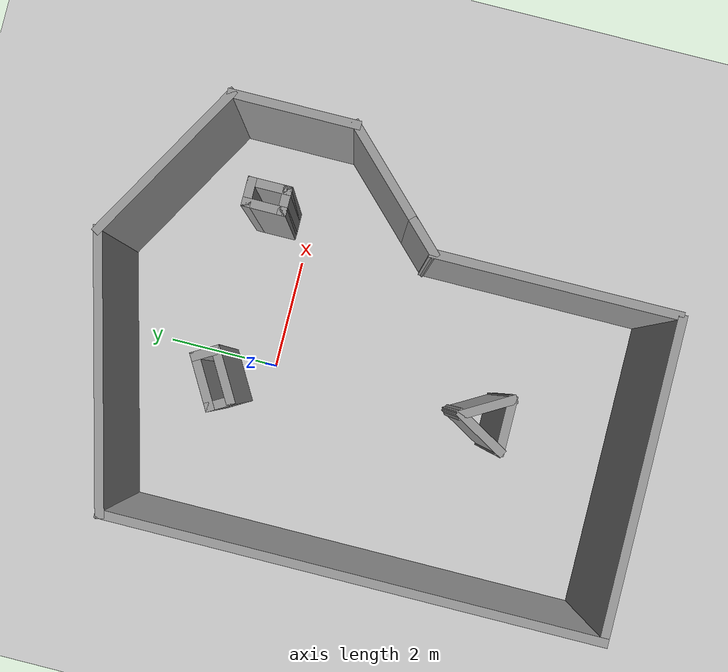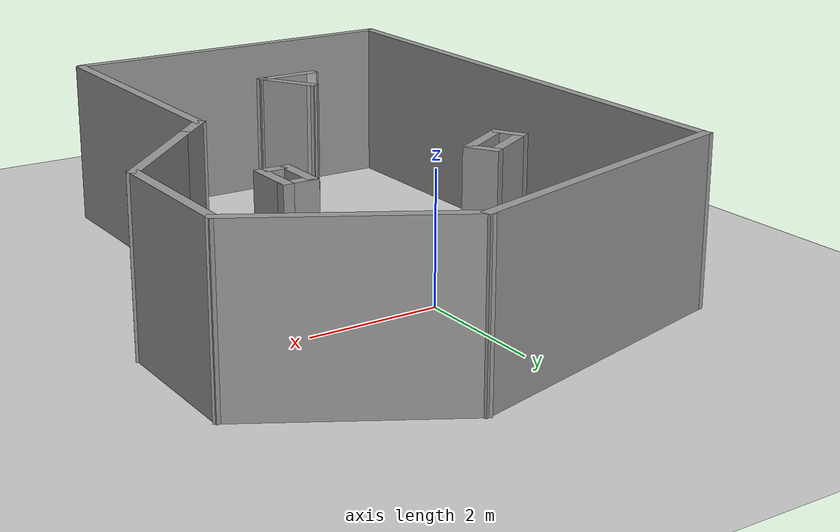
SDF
<sdf version="1.7">
 <world name="default">
  <light name="sun" type="directional">
   <pose>0 0 10 0 -0 0</pose>
   <diffuse>0.8 0.8 0.8 1</diffuse>
   <specular>0.2 0.2 0.2 1</specular>
   <attenuation>
    <range>1000</range>
    <constant>0.9</constant>
    <linear>0.01</linear>
    <quadratic>0.001</quadratic>
   </attenuation>
   <direction>-0.5 0.1 -0.9</direction>
   <spot><inner_angle>0</inner_angle><outer_angle>0</outer_angle><falloff>0</falloff></spot>
  </light>
  <model name="ground_plane">
   <static>1</static>
   <link name="link">
    <collision name="collision">
     <geometry><plane><normal>0 0 1</normal><size>100 100</size></plane></geometry>
     <surface><friction><ode><mu>100</mu><mu2>50</mu2></ode></friction></surface>
    </collision>
    <visual name="visual">
     <cast_shadows>0</cast_shadows>
     <geometry><plane><normal>0 0 1</normal><size>100 100</size></plane></geometry>
     <material>
      <script><uri>file://media/materials/scripts/gazebo.material</uri><name>Gazebo/Grey</name></script>
     </material>
    </visual>
   </link>
  </model>
  <gravity>0 0 -9.8</gravity>
  <magnetic_field>6e-06 2.3e-05 -4.2e-05</magnetic_field>
  <atmosphere type="adiabatic"/>
  <physics type="ode">
   <max_step_size>0.001</max_step_size>
   <real_time_factor>1</real_time_factor>
   <real_time_update_rate>1000</real_time_update_rate>
  </physics>
  <scene><ambient>0.4 0.4 0.4 1</ambient><background>0.7 0.7 0.7 1</background><shadows>1</shadows></scene>
  <audio><device>default</device></audio>
  <spherical_coordinates>
   <surface_model>EARTH_WGS84</surface_model>
   <latitude_deg>0</latitude_deg>
   <longitude_deg>0</longitude_deg>
   <elevation>0</elevation>
   <heading_deg>0</heading_deg>
  </spherical_coordinates>
  <model name="Untitled">
   <pose>0.581074 -1.61599 0 0 -0 0</pose>
   <link name="Wall_0">
    <collision name="Wall_0_Collision">
     <geometry><box><size>8.5 0.15 2.5</size></box></geometry>
     <pose>0 0 1.25 0 -0 0</pose>
    </collision>
    <visual name="Wall_0_Visual">
     <pose>0 0 1.25 0 -0 0</pose>
     <geometry><box><size>8.5 0.15 2.5</size></box></geometry>
     <material>
      <script><uri>file://media/materials/scripts/gazebo.material</uri><name>Gazebo/Grey</name></script>
      <ambient>1 1 1 1</ambient>
     </material>
     <meta><layer>0</layer></meta>
    </visual>
    <pose>-3.57107 -0.60901 0 0 -0 -1.5708</pose>
   </link>
   <link name="Wall_12">
    <collision name="Wall_12_Collision">
     <geometry><box><size>5.5 0.15 2.5</size></box></geometry>
     <pose>0 0 1.25 0 -0 0</pose>
    </collision>
    <visual name="Wall_12_Visual">
     <pose>0 0 1.25 0 -0 0</pose>
     <geometry><box><size>5.5 0.15 2.5</size></box></geometry>
     <material>
      <script><uri>file://media/materials/scripts/gazebo.material</uri><name>Gazebo/Grey</name></script>
      <ambient>1 1 1 1</ambient>
     </material>
     <meta><layer>0</layer></meta>
    </visual>
    <pose>-0.896074 -4.78401 0 0 -0 0</pose>
   </link>
   <link name="Wall_14">
    <collision name="Wall_14_Collision">
     <geometry><box><size>1 0.15 2.5</size></box></geometry>
     <pose>0 0 1.25 0 -0 0</pose>
    </collision>
    <visual name="Wall_14_Visual">
     <pose>0 0 1.25 0 -0 0</pose>
     <geometry><box><size>1 0.15 2.5</size></box></geometry>
     <material>
      <script><uri>file://media/materials/scripts/gazebo.material</uri><name>Gazebo/Grey</name></script>
      <ambient>1 1 1 1</ambient>
     </material>
     <meta><layer>0</layer></meta>
    </visual>
    <pose>-1.10053 2.49841 0 0 -0 0.523599</pose>
   </link>
   <link name="Wall_15">
    <collision name="Wall_15_Collision">
     <geometry><box><size>0.5 0.15 2.5</size></box></geometry>
     <pose>0 0 1.25 0 -0 0</pose>
    </collision>
    <visual name="Wall_15_Visual">
     <pose>0 0 1.25 0 -0 0</pose>
     <geometry><box><size>0.5 0.15 2.5</size></box></geometry>
     <material>
      <script><uri>file://media/materials/scripts/gazebo.material</uri><name>Gazebo/Grey</name></script>
      <ambient>1 1 1 1</ambient>
     </material>
     <meta><layer>0</layer></meta>
    </visual>
    <pose>-0.64497 2.55936 0 0 -0 -1.0472</pose>
   </link>
   <link name="Wall_16">
    <collision name="Wall_16_Collision">
     <geometry><box><size>1 0.15 2.5</size></box></geometry>
     <pose>0 0 1.25 0 -0 0</pose>
    </collision>
    <visual name="Wall_16_Visual">
     <pose>0 0 1.25 0 -0 0</pose>
     <geometry><box><size>1 0.15 2.5</size></box></geometry>
     <material>
      <script><uri>file://media/materials/scripts/gazebo.material</uri><name>Gazebo/Grey</name></script>
      <ambient>1 1 1 1</ambient>
     </material>
     <meta><layer>0</layer></meta>
    </visual>
    <pose>-0.925531 2.1953 0 0 -0 -2.61799</pose>
   </link>
   <link name="Wall_17">
    <collision name="Wall_17_Collision">
     <geometry><box><size>0.5 0.15 2.5</size></box></geometry>
     <pose>0 0 1.25 0 -0 0</pose>
    </collision>
    <visual name="Wall_17_Visual">
     <pose>0 0 1.25 0 -0 0</pose>
     <geometry><box><size>0.5 0.15 2.5</size></box></geometry>
     <material>
      <script><uri>file://media/materials/scripts/gazebo.material</uri><name>Gazebo/Grey</name></script>
      <ambient>1 1 1 1</ambient>
     </material>
     <meta><layer>0</layer></meta>
    </visual>
    <pose>-1.38109 2.13436 0 0 -0 2.0944</pose>
   </link>
   <link name="Wall_19">
    <collision name="Wall_19_Collision">
     <geometry><box><size>0.75 0.15 2.5</size></box></geometry>
     <pose>0 0 1.25 0 -0 0</pose>
    </collision>
    <visual name="Wall_19_Visual">
     <pose>0 0 1.25 0 -0 0</pose>
     <geometry><box><size>0.75 0.15 2.5</size></box></geometry>
     <material>
      <script><uri>file://media/materials/scripts/gazebo.material</uri><name>Gazebo/Grey</name></script>
      <ambient>1 1 1 1</ambient>
     </material>
     <meta><layer>0</layer></meta>
    </visual>
    <pose>1.8895 2.23077 0 0 -0 -1.5708</pose>
   </link>
   <link name="Wall_20">
    <collision name="Wall_20_Collision">
     <geometry><box><size>0.5 0.15 2.5</size></box></geometry>
     <pose>0 0 1.25 0 -0 0</pose>
    </collision>
    <visual name="Wall_20_Visual">
     <pose>0 0 1.25 0 -0 0</pose>
     <geometry><box><size>0.5 0.15 2.5</size></box></geometry>
     <material>
      <script><uri>file://media/materials/scripts/gazebo.material</uri><name>Gazebo/Grey</name></script>
      <ambient>1 1 1 1</ambient>
     </material>
     <meta><layer>0</layer></meta>
    </visual>
    <pose>2.0645 1.93077 0 0 -0 0</pose>
   </link>
   <link name="Wall_21">
    <collision name="Wall_21_Collision">
     <geometry><box><size>0.75 0.15 2.5</size></box></geometry>
     <pose>0 0 1.25 0 -0 0</pose>
    </collision>
    <visual name="Wall_21_Visual">
     <pose>0 0 1.25 0 -0 0</pose>
     <geometry><box><size>0.75 0.15 2.5</size></box></geometry>
     <material>
      <script><uri>file://media/materials/scripts/gazebo.material</uri><name>Gazebo/Grey</name></script>
      <ambient>1 1 1 1</ambient>
     </material>
     <meta><layer>0</layer></meta>
    </visual>
    <pose>2.2395 2.23077 0 0 -0 1.5708</pose>
   </link>
   <link name="Wall_22">
    <collision name="Wall_22_Collision">
     <geometry><box><size>0.5 0.15 2.5</size></box></geometry>
     <pose>0 0 1.25 0 -0 0</pose>
    </collision>
    <visual name="Wall_22_Visual">
     <pose>0 0 1.25 0 -0 0</pose>
     <geometry><box><size>0.5 0.15 2.5</size></box></geometry>
     <material>
      <script><uri>file://media/materials/scripts/gazebo.material</uri><name>Gazebo/Grey</name></script>
      <ambient>1 1 1 1</ambient>
     </material>
     <meta><layer>0</layer></meta>
    </visual>
    <pose>2.0645 2.53077 0 0 -0 3.14159</pose>
   </link>
   <link name="Wall_24">
    <collision name="Wall_24_Collision">
     <geometry><box><size>1 0.15 2.5</size></box></geometry>
     <pose>0 0 1.25 0 -0 0</pose>
    </collision>
    <visual name="Wall_24_Visual">
     <pose>0 0 1.25 0 -0 0</pose>
     <geometry><box><size>1 0.15 2.5</size></box></geometry>
     <material>
      <script><uri>file://media/materials/scripts/gazebo.material</uri><name>Gazebo/Grey</name></script>
      <ambient>1 1 1 1</ambient>
     </material>
     <meta><layer>0</layer></meta>
    </visual>
    <pose>-0.80135 -2.06834 0 0 -0 1.0472</pose>
   </link>
   <link name="Wall_25">
    <collision name="Wall_25_Collision">
     <geometry><box><size>1 0.15 2.5</size></box></geometry>
     <pose>0 0 1.25 0 -0 0</pose>
    </collision>
    <visual name="Wall_25_Visual">
     <pose>0 0 1.25 0 -0 0</pose>
     <geometry><box><size>1 0.15 2.5</size></box></geometry>
     <material>
      <script><uri>file://media/materials/scripts/gazebo.material</uri><name>Gazebo/Grey</name></script>
      <ambient>1 1 1 1</ambient>
     </material>
     <meta><layer>0</layer></meta>
    </visual>
    <pose>-0.37635 -2.06834 0 0 -0 -1.0472</pose>
   </link>
   <link name="Wall_26">
    <collision name="Wall_26_Collision">
     <geometry><box><size>1 0.15 2.5</size></box></geometry>
     <pose>0 0 1.25 0 -0 0</pose>
    </collision>
    <visual name="Wall_26_Visual">
     <pose>0 0 1.25 0 -0 0</pose>
     <geometry><box><size>1 0.15 2.5</size></box></geometry>
     <material>
      <script><uri>file://media/materials/scripts/gazebo.material</uri><name>Gazebo/Grey</name></script>
      <ambient>1 1 1 1</ambient>
     </material>
     <meta><layer>0</layer></meta>
    </visual>
    <pose>-0.58885 -2.4364 0 0 -0 3.14159</pose>
   </link>
   <link name="Wall_3">
    <collision name="Wall_3_Collision">
     <geometry><box><size>4.75 0.15 2.5</size></box></geometry>
     <pose>0 0 1.25 0 -0 0</pose>
    </collision>
    <visual name="Wall_3_Visual">
     <pose>0 0 1.25 0 -0 0</pose>
     <geometry><box><size>4.75 0.15 2.5</size></box></geometry>
     <material>
      <script><uri>file://media/materials/scripts/gazebo.material</uri><name>Gazebo/Grey</name></script>
      <ambient>1 1 1 1</ambient>
     </material>
     <meta><layer>0</layer></meta>
    </visual>
    <pose>-1.34945 4.16127 0 0 -0 0.261799</pose>
   </link>
   <link name="Wall_4">
    <collision name="Wall_4_Collision">
     <geometry><box><size>3.25 0.15 2.5</size></box></geometry>
     <pose>0 0 1.25 0 -0 0</pose>
    </collision>
    <visual name="Wall_4_Visual">
     <pose>0 0 1.25 0 -0 0</pose>
     <geometry><box><size>3.25 0.15 2.5</size></box></geometry>
     <material>
      <script><uri>file://media/materials/scripts/gazebo.material</uri><name>Gazebo/Grey</name></script>
      <ambient>1 1 1 1</ambient>
     </material>
     <meta><layer>0</layer></meta>
    </visual>
    <pose>2.21452 3.98156 0 0 -0 -0.523599</pose>
   </link>
   <link name="Wall_5">
    <collision name="Wall_5_Collision">
     <geometry><box><size>2.25 0.15 2.5</size></box></geometry>
     <pose>0 0 1.25 0 -0 0</pose>
    </collision>
    <visual name="Wall_5_Visual">
     <pose>0 0 1.25 0 -0 0</pose>
     <geometry><box><size>2.25 0.15 2.5</size></box></geometry>
     <material>
      <script><uri>file://media/materials/scripts/gazebo.material</uri><name>Gazebo/Grey</name></script>
      <ambient>1 1 1 1</ambient>
     </material>
     <meta><layer>0</layer></meta>
    </visual>
    <pose>3.55686 2.15656 0 0 -0 -1.5708</pose>
   </link>
   <link name="Wall_6">
    <collision name="Wall_6_Collision">
     <geometry><box><size>2 0.15 2.5</size></box></geometry>
     <pose>0 0 1.25 0 -0 0</pose>
    </collision>
    <visual name="Wall_6_Visual">
     <pose>0 0 1.25 0 -0 0</pose>
     <geometry><box><size>2 0.15 2.5</size></box></geometry>
     <material>
      <script><uri>file://media/materials/scripts/gazebo.material</uri><name>Gazebo/Grey</name></script>
      <ambient>1 1 1 1</ambient>
     </material>
     <meta><layer>0</layer></meta>
    </visual>
    <pose>2.90279 0.452484 0 0 -0 -2.35619</pose>
   </link>
   <link name="Wall_7">
    <collision name="Wall_7_Collision">
     <geometry><box><size>0.75 0.15 2.5</size></box></geometry>
     <pose>0 0 1.25 0 -0 0</pose>
    </collision>
    <visual name="Wall_7_Visual">
     <pose>0 0 1.25 0 -0 0</pose>
     <geometry><box><size>0.75 0.15 2.5</size></box></geometry>
     <material>
      <script><uri>file://media/materials/scripts/gazebo.material</uri><name>Gazebo/Grey</name></script>
      <ambient>1 1 1 1</ambient>
     </material>
     <meta><layer>0</layer></meta>
    </visual>
    <pose>2.03658 -0.413722 0 0 -0 -2.35619</pose>
   </link>
   <link name="Wall_8">
    <collision name="Wall_8_Collision">
     <geometry><box><size>4.25 0.15 2.5</size></box></geometry>
     <pose>0 0 1.25 0 -0 0</pose>
    </collision>
    <visual name="Wall_8_Visual">
     <pose>0 0 1.25 0 -0 0</pose>
     <geometry><box><size>4.25 0.15 2.5</size></box></geometry>
     <material>
      <script><uri>file://media/materials/scripts/gazebo.material</uri><name>Gazebo/Grey</name></script>
      <ambient>1 1 1 1</ambient>
     </material>
     <meta><layer>0</layer></meta>
    </visual>
    <pose>1.82445 -2.67585 0 0 -0 -1.5708</pose>
   </link>
   <static>1</static>
  </model>
 </world>
</sdf>
